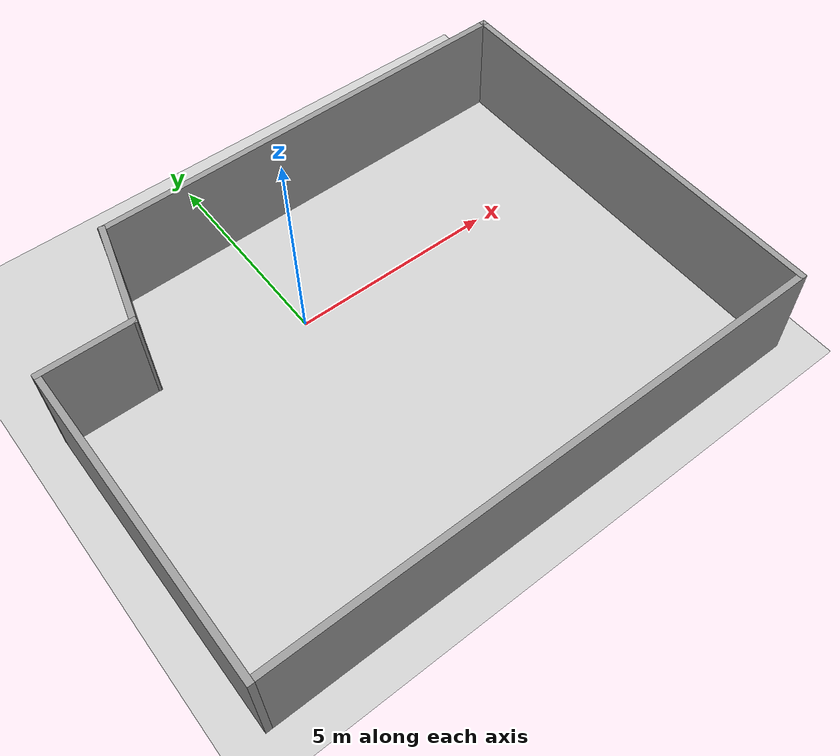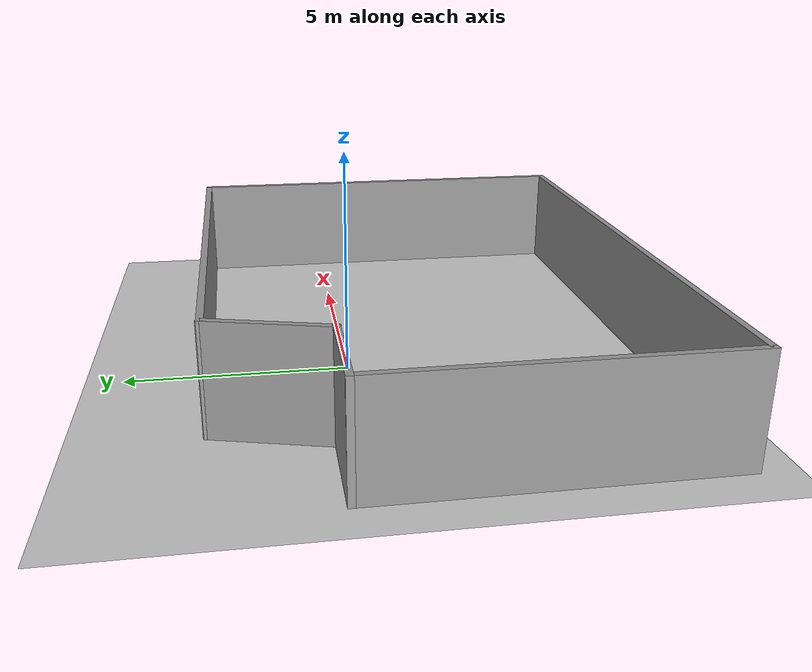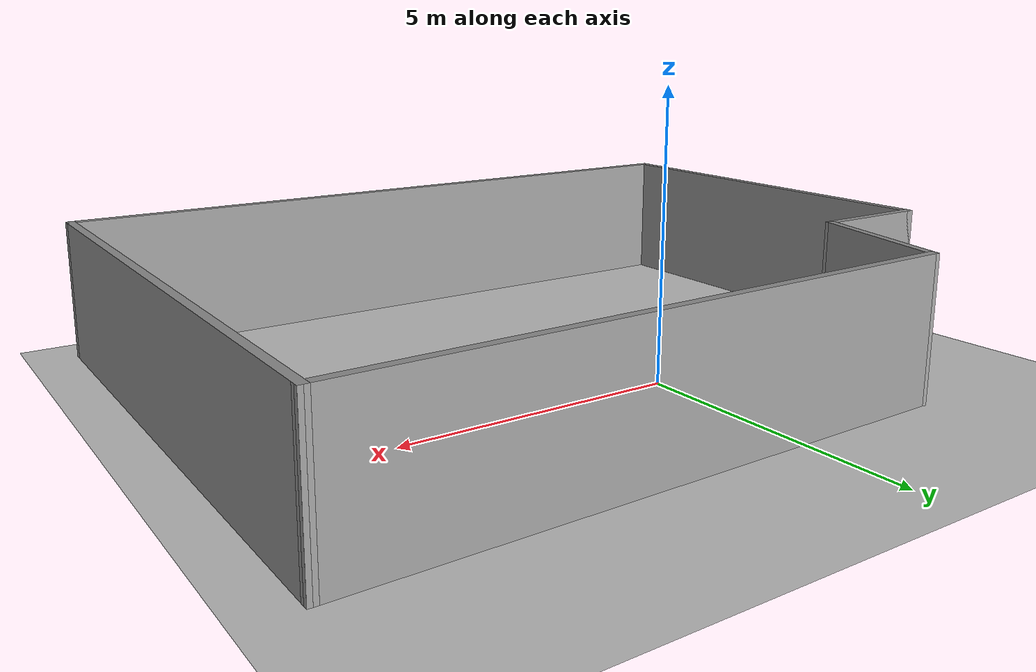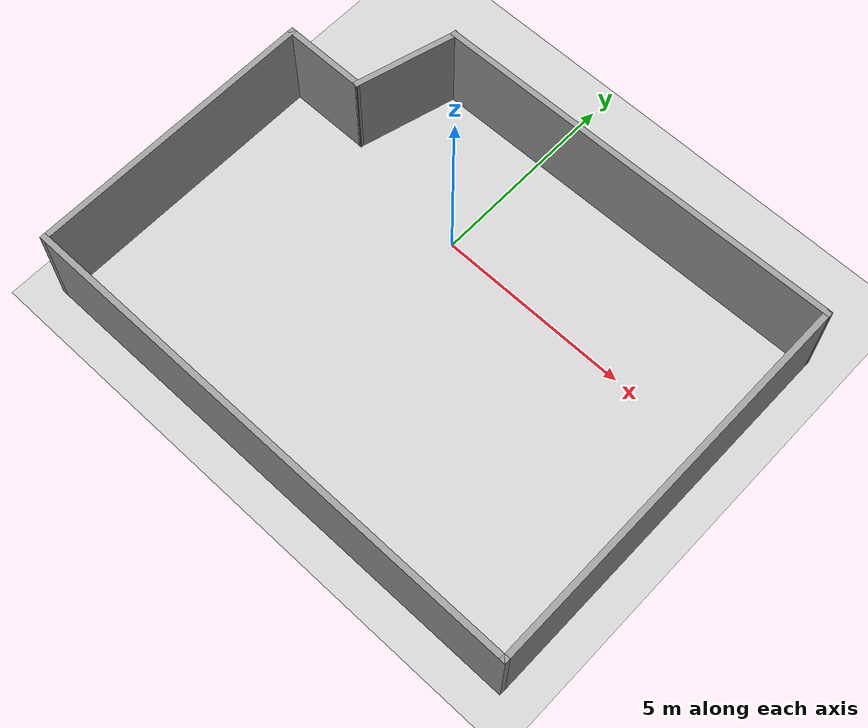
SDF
<sdf version="1.7">
 <world name="default">
  <light name="sun" type="directional">
   <pose>0 0 10 0 -0 0</pose>
   <diffuse>0.8 0.8 0.8 1</diffuse>
   <specular>0.2 0.2 0.2 1</specular>
   <attenuation>
    <range>1000</range>
    <constant>0.9</constant>
    <linear>0.01</linear>
    <quadratic>0.001</quadratic>
   </attenuation>
   <direction>-0.5 0.1 -0.9</direction>
   <spot><inner_angle>0</inner_angle><outer_angle>0</outer_angle><falloff>0</falloff></spot>
  </light>
  <model name="ground_plane">
   <static>1</static>
   <link name="link">
    <collision name="collision">
     <geometry><plane><normal>0 0 1</normal><size>100 100</size></plane></geometry>
     <surface>
      <contact><collide_bitmask>65535</collide_bitmask></contact>
      <friction><ode><mu>100</mu><mu2>50</mu2></ode></friction>
     </surface>
    </collision>
    <visual name="visual">
     <cast_shadows>0</cast_shadows>
     <geometry><plane><normal>0 0 1</normal><size>100 100</size></plane></geometry>
     <material>
      <script><uri>file://media/materials/scripts/gazebo.material</uri><name>Gazebo/Grey</name></script>
     </material>
    </visual>
   </link>
  </model>
  <gravity>0 0 -9.8</gravity>
  <magnetic_field>6e-06 2.3e-05 -4.2e-05</magnetic_field>
  <atmosphere type="adiabatic"/>
  <physics type="ode">
   <max_step_size>0.001</max_step_size>
   <real_time_factor>1</real_time_factor>
   <real_time_update_rate>1000</real_time_update_rate>
  </physics>
  <scene><ambient>0.4 0.4 0.4 1</ambient><background>0.7 0.7 0.7 1</background><shadows>1</shadows></scene>
  <audio><device>default</device></audio>
  <spherical_coordinates>
   <surface_model>EARTH_WGS84</surface_model>
   <latitude_deg>0</latitude_deg>
   <longitude_deg>0</longitude_deg>
   <elevation>0</elevation>
   <heading_deg>0</heading_deg>
  </spherical_coordinates>
  <model name="lab211">
   <pose>1.09465 -1.84844 0 0 -0 0</pose>
   <link name="Wall_13">
    <collision name="Wall_13_Collision">
     <geometry><box><size>10.25 0.15 2.5</size></box></geometry>
     <pose>0 0 1.25 0 -0 0</pose>
    </collision>
    <visual name="Wall_13_Visual">
     <pose>0 0 1.25 0 -0 0</pose>
     <geometry><box><size>10.25 0.15 2.5</size></box></geometry>
     <material>
      <script><uri>file://media/materials/scripts/gazebo.material</uri><name>Gazebo/Grey</name></script>
      <ambient>1 1 1 1</ambient>
     </material>
     <meta><layer>0</layer></meta>
    </visual>
    <pose>6.67451 -0.000494 0 0 -0 -1.5708</pose>
   </link>
   <link name="Wall_14">
    <collision name="Wall_14_Collision">
     <geometry><box><size>13.5 0.15 2.5</size></box></geometry>
     <pose>0 0 1.25 0 -0 0</pose>
    </collision>
    <visual name="Wall_14_Visual">
     <pose>0 0 1.25 0 -0 0</pose>
     <geometry><box><size>13.5 0.15 2.5</size></box></geometry>
     <material>
      <script><uri>file://media/materials/scripts/gazebo.material</uri><name>Gazebo/Grey</name></script>
      <ambient>1 1 1 1</ambient>
     </material>
     <meta><layer>0</layer></meta>
    </visual>
    <pose>-0.000494 -5.05049 0 0 -0 3.14159</pose>
   </link>
   <link name="Wall_17">
    <collision name="Wall_17_Collision">
     <geometry><box><size>2.25 0.15 2.5</size></box></geometry>
     <pose>0 0 1.25 0 -0 0</pose>
    </collision>
    <visual name="Wall_17_Visual">
     <pose>0 0 1.25 0 -0 0</pose>
     <geometry><box><size>2.25 0.15 2.5</size></box></geometry>
     <material>
      <script><uri>file://media/materials/scripts/gazebo.material</uri><name>Gazebo/Grey</name></script>
      <ambient>1 1 1 1</ambient>
     </material>
     <meta><layer>0</layer></meta>
    </visual>
    <pose>-5.62549 2.39764 0 0 -0 0</pose>
   </link>
   <link name="Wall_18">
    <collision name="Wall_18_Collision">
     <geometry><box><size>2.75 0.15 2.5</size></box></geometry>
     <pose>0 0 1.25 0 -0 0</pose>
    </collision>
    <visual name="Wall_18_Visual">
     <pose>0 0 1.25 0 -0 0</pose>
     <geometry><box><size>2.75 0.15 2.5</size></box></geometry>
     <material>
      <script><uri>file://media/materials/scripts/gazebo.material</uri><name>Gazebo/Grey</name></script>
      <ambient>1 1 1 1</ambient>
     </material>
     <meta><layer>0</layer></meta>
    </visual>
    <pose>-4.23903 3.65335 0 0 -0 1.309</pose>
   </link>
   <link name="Wall_20">
    <collision name="Wall_20_Collision">
     <geometry><box><size>10.728 0.15 2.5</size></box></geometry>
     <pose>0 0 1.25 0 -0 0</pose>
    </collision>
    <visual name="Wall_20_Visual">
     <pose>0 0 1.25 0 -0 0</pose>
     <geometry><box><size>10.728 0.15 2.5</size></box></geometry>
     <material>
      <script><uri>file://media/materials/scripts/gazebo.material</uri><name>Gazebo/Grey</name></script>
      <ambient>1 1 1 1</ambient>
     </material>
     <meta><layer>0</layer></meta>
    </visual>
    <pose>1.38597 4.97928 0 0 -0 0.013279</pose>
   </link>
   <link name="Wall_22">
    <collision name="Wall_22_Collision">
     <geometry><box><size>7.59814 0.15 2.5</size></box></geometry>
     <pose>0 0 1.25 0 -0 0</pose>
    </collision>
    <visual name="Wall_22_Visual">
     <pose>0 0 1.25 0 -0 0</pose>
     <geometry><box><size>7.59814 0.15 2.5</size></box></geometry>
     <material>
      <script><uri>file://media/materials/scripts/gazebo.material</uri><name>Gazebo/Grey</name></script>
      <ambient>1 1 1 1</ambient>
     </material>
     <meta><layer>0</layer></meta>
    </visual>
    <pose>-6.67549 -1.32643 0 0 -0 -1.5708</pose>
   </link>
   <static>1</static>
  </model>
 </world>
</sdf>
